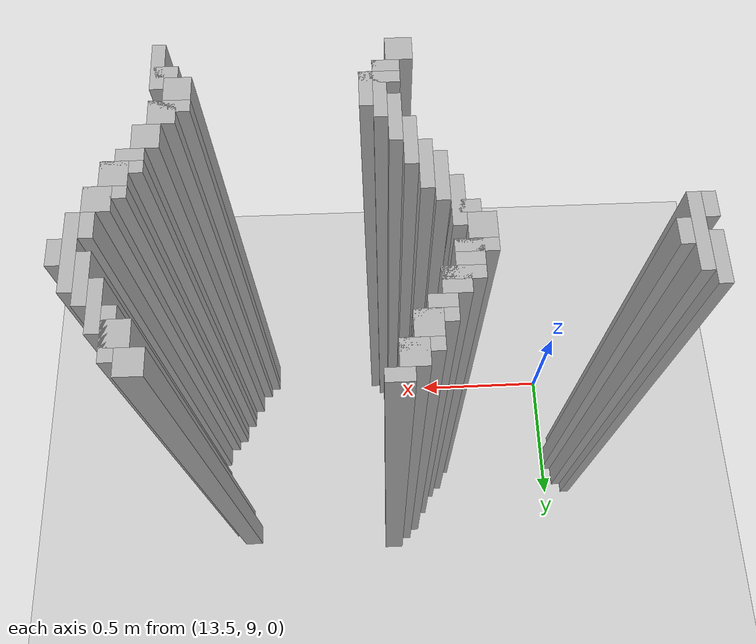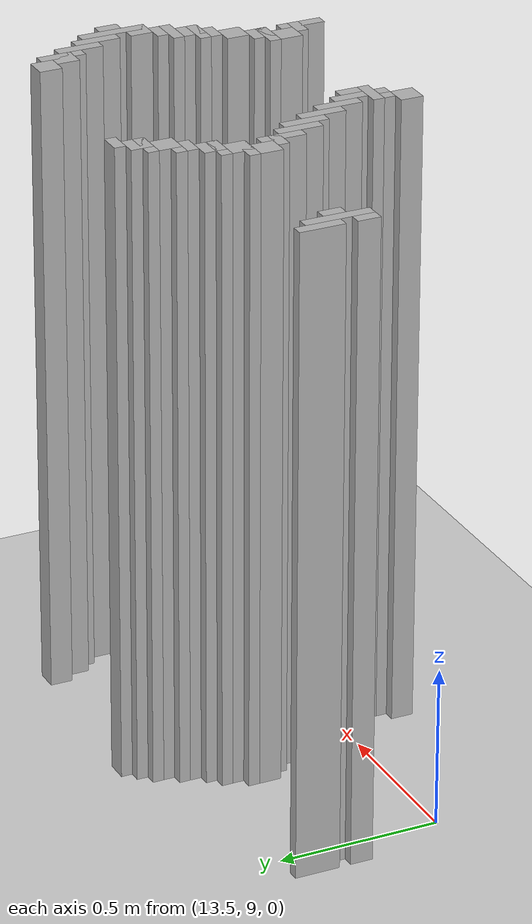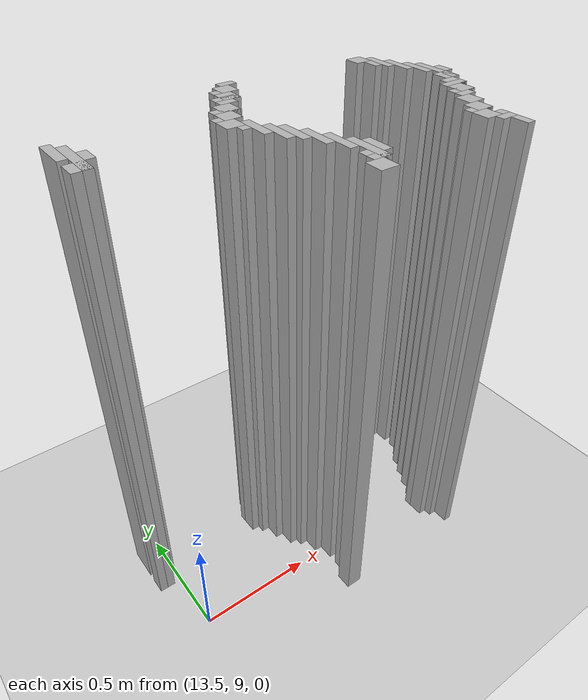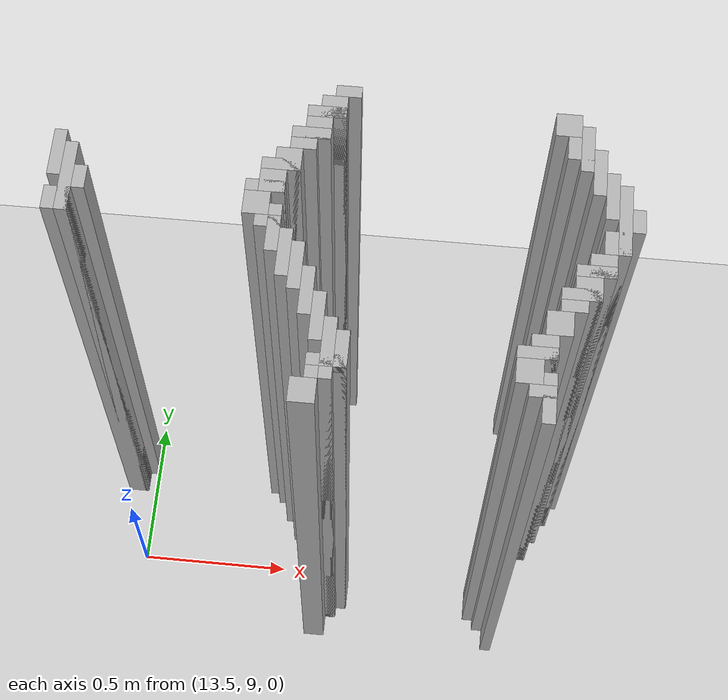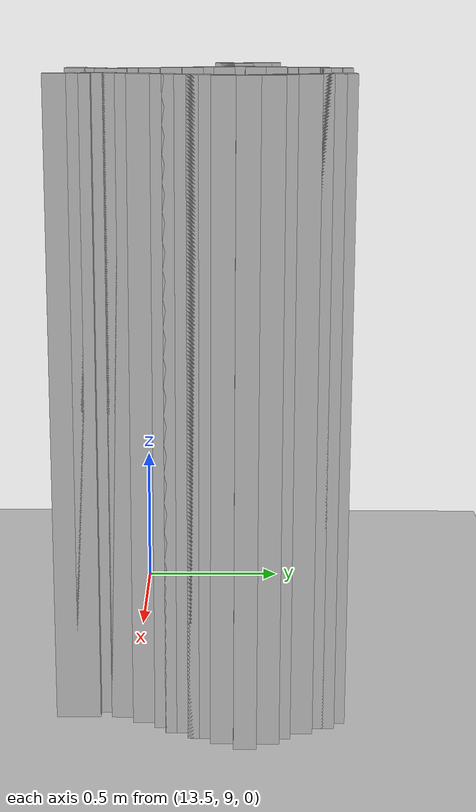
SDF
<sdf version="1.6">
 <world name="slam_world">
  <model name="ground_plane">
   <static>true</static>
   <link name="link">
    <collision name="collision">
     <geometry><plane><normal>0 0 1</normal><size>100 100</size></plane></geometry>
    </collision>
    <visual name="visual">
     <geometry><plane><normal>0 0 1</normal><size>100 100</size></plane></geometry>
     <material>
      <ambient>0.8 0.8 0.8 1</ambient>
      <diffuse>0.8 0.8 0.8 1</diffuse>
      <specular>0.8 0.8 0.8 1</specular>
     </material>
    </visual>
   </link>
  </model>
  <model name="wall_2558">
   <static>true</static>
   <pose>14.164733178654291 9.692575406032482 1.0 0 0 0</pose>
   <link name="link">
    <collision name="collision">
     <geometry><box><size>0.06960556844547564 0.03480278422273782 2.0</size></box></geometry>
    </collision>
    <visual name="visual">
     <geometry><box><size>0.06960556844547564 0.03480278422273782 2.0</size></box></geometry>
     <material><ambient>0.5 0.5 0.5 1</ambient><diffuse>0.7 0.7 0.7 1</diffuse></material>
    </visual>
   </link>
  </model>
  <model name="wall_2569">
   <static>true</static>
   <pose>14.129930394431554 9.640371229698376 1.0 0 0 0</pose>
   <link name="link">
    <collision name="collision">
     <geometry><box><size>0.06960556844547564 0.06960556844547564 2.0</size></box></geometry>
    </collision>
    <visual name="visual">
     <geometry><box><size>0.06960556844547564 0.06960556844547564 2.0</size></box></geometry>
     <material><ambient>0.5 0.5 0.5 1</ambient><diffuse>0.7 0.7 0.7 1</diffuse></material>
    </visual>
   </link>
  </model>
  <model name="wall_2570">
   <static>true</static>
   <pose>14.756380510440835 9.640371229698376 1.0 0 0 0</pose>
   <link name="link">
    <collision name="collision">
     <geometry><box><size>0.06960556844547564 0.06960556844547564 2.0</size></box></geometry>
    </collision>
    <visual name="visual">
     <geometry><box><size>0.06960556844547564 0.06960556844547564 2.0</size></box></geometry>
     <material><ambient>0.5 0.5 0.5 1</ambient><diffuse>0.7 0.7 0.7 1</diffuse></material>
    </visual>
   </link>
  </model>
  <model name="wall_2580">
   <static>true</static>
   <pose>14.112529002320185 9.622969837587007 1.0 0 0 0</pose>
   <link name="link">
    <collision name="collision">
     <geometry><box><size>0.10440835266821345 0.03480278422273782 2.0</size></box></geometry>
    </collision>
    <visual name="visual">
     <geometry><box><size>0.10440835266821345 0.03480278422273782 2.0</size></box></geometry>
     <material><ambient>0.5 0.5 0.5 1</ambient><diffuse>0.7 0.7 0.7 1</diffuse></material>
    </visual>
   </link>
  </model>
  <model name="wall_2581">
   <static>true</static>
   <pose>14.80858468677494 9.5707656612529 1.0 0 0 0</pose>
   <link name="link">
    <collision name="collision">
     <geometry><box><size>0.03480278422273782 0.13921113689095127 2.0</size></box></geometry>
    </collision>
    <visual name="visual">
     <geometry><box><size>0.03480278422273782 0.13921113689095127 2.0</size></box></geometry>
     <material><ambient>0.5 0.5 0.5 1</ambient><diffuse>0.7 0.7 0.7 1</diffuse></material>
    </visual>
   </link>
  </model>
  <model name="wall_2591">
   <static>true</static>
   <pose>14.095127610208817 9.5707656612529 1.0 0 0 0</pose>
   <link name="link">
    <collision name="collision">
     <geometry><box><size>0.06960556844547564 0.06960556844547564 2.0</size></box></geometry>
    </collision>
    <visual name="visual">
     <geometry><box><size>0.06960556844547564 0.06960556844547564 2.0</size></box></geometry>
     <material><ambient>0.5 0.5 0.5 1</ambient><diffuse>0.7 0.7 0.7 1</diffuse></material>
    </visual>
   </link>
  </model>
  <model name="wall_2592">
   <static>true</static>
   <pose>14.791183294663572 9.5707656612529 1.0 0 0 0</pose>
   <link name="link">
    <collision name="collision">
     <geometry><box><size>0.06960556844547564 0.06960556844547564 2.0</size></box></geometry>
    </collision>
    <visual name="visual">
     <geometry><box><size>0.06960556844547564 0.06960556844547564 2.0</size></box></geometry>
     <material><ambient>0.5 0.5 0.5 1</ambient><diffuse>0.7 0.7 0.7 1</diffuse></material>
    </visual>
   </link>
  </model>
  <model name="wall_2602">
   <static>true</static>
   <pose>14.077726218097448 9.55336426914153 1.0 0 0 0</pose>
   <link name="link">
    <collision name="collision">
     <geometry><box><size>0.10440835266821345 0.03480278422273782 2.0</size></box></geometry>
    </collision>
    <visual name="visual">
     <geometry><box><size>0.10440835266821345 0.03480278422273782 2.0</size></box></geometry>
     <material><ambient>0.5 0.5 0.5 1</ambient><diffuse>0.7 0.7 0.7 1</diffuse></material>
    </visual>
   </link>
  </model>
  <model name="wall_2603">
   <static>true</static>
   <pose>14.84338747099768 9.501160092807424 1.0 0 0 0</pose>
   <link name="link">
    <collision name="collision">
     <geometry><box><size>0.03480278422273782 0.13921113689095127 2.0</size></box></geometry>
    </collision>
    <visual name="visual">
     <geometry><box><size>0.03480278422273782 0.13921113689095127 2.0</size></box></geometry>
     <material><ambient>0.5 0.5 0.5 1</ambient><diffuse>0.7 0.7 0.7 1</diffuse></material>
    </visual>
   </link>
  </model>
  <model name="wall_2606">
   <static>true</static>
   <pose>14.06032482598608 9.518561484918793 1.0 0 0 0</pose>
   <link name="link">
    <collision name="collision">
     <geometry><box><size>0.06960556844547564 0.03480278422273782 2.0</size></box></geometry>
    </collision>
    <visual name="visual">
     <geometry><box><size>0.06960556844547564 0.03480278422273782 2.0</size></box></geometry>
     <material><ambient>0.5 0.5 0.5 1</ambient><diffuse>0.7 0.7 0.7 1</diffuse></material>
    </visual>
   </link>
  </model>
  <model name="wall_2615">
   <static>true</static>
   <pose>13.416473317865428 9.431554524361948 1.0 0 0 0</pose>
   <link name="link">
    <collision name="collision">
     <geometry><box><size>0.03480278422273782 0.13921113689095127 2.0</size></box></geometry>
    </collision>
    <visual name="visual">
     <geometry><box><size>0.03480278422273782 0.13921113689095127 2.0</size></box></geometry>
     <material><ambient>0.5 0.5 0.5 1</ambient><diffuse>0.7 0.7 0.7 1</diffuse></material>
    </visual>
   </link>
  </model>
  <model name="wall_2616">
   <static>true</static>
   <pose>14.02552204176334 9.466357308584687 1.0 0 0 0</pose>
   <link name="link">
    <collision name="collision">
     <geometry><box><size>0.06960556844547564 0.06960556844547564 2.0</size></box></geometry>
    </collision>
    <visual name="visual">
     <geometry><box><size>0.06960556844547564 0.06960556844547564 2.0</size></box></geometry>
     <material><ambient>0.5 0.5 0.5 1</ambient><diffuse>0.7 0.7 0.7 1</diffuse></material>
    </visual>
   </link>
  </model>
  <model name="wall_2617">
   <static>true</static>
   <pose>14.878190255220417 9.431554524361948 1.0 0 0 0</pose>
   <link name="link">
    <collision name="collision">
     <geometry><box><size>0.03480278422273782 0.13921113689095127 2.0</size></box></geometry>
    </collision>
    <visual name="visual">
     <geometry><box><size>0.03480278422273782 0.13921113689095127 2.0</size></box></geometry>
     <material><ambient>0.5 0.5 0.5 1</ambient><diffuse>0.7 0.7 0.7 1</diffuse></material>
    </visual>
   </link>
  </model>
  <model name="wall_2626">
   <static>true</static>
   <pose>13.451276102088167 9.361948955916473 1.0 0 0 0</pose>
   <link name="link">
    <collision name="collision">
     <geometry><box><size>0.03480278422273782 0.2088167053364269 2.0</size></box></geometry>
    </collision>
    <visual name="visual">
     <geometry><box><size>0.03480278422273782 0.2088167053364269 2.0</size></box></geometry>
     <material><ambient>0.5 0.5 0.5 1</ambient><diffuse>0.7 0.7 0.7 1</diffuse></material>
    </visual>
   </link>
  </model>
  <model name="wall_2627">
   <static>true</static>
   <pose>14.008120649651971 9.448955916473318 1.0 0 0 0</pose>
   <link name="link">
    <collision name="collision">
     <geometry><box><size>0.10440835266821345 0.03480278422273782 2.0</size></box></geometry>
    </collision>
    <visual name="visual">
     <geometry><box><size>0.10440835266821345 0.03480278422273782 2.0</size></box></geometry>
     <material><ambient>0.5 0.5 0.5 1</ambient><diffuse>0.7 0.7 0.7 1</diffuse></material>
    </visual>
   </link>
  </model>
  <model name="wall_2628">
   <static>true</static>
   <pose>14.912993039443155 9.361948955916473 1.0 0 0 0</pose>
   <link name="link">
    <collision name="collision">
     <geometry><box><size>0.03480278422273782 0.2088167053364269 2.0</size></box></geometry>
    </collision>
    <visual name="visual">
     <geometry><box><size>0.03480278422273782 0.2088167053364269 2.0</size></box></geometry>
     <material><ambient>0.5 0.5 0.5 1</ambient><diffuse>0.7 0.7 0.7 1</diffuse></material>
    </visual>
   </link>
  </model>
  <model name="wall_2631">
   <static>true</static>
   <pose>13.990719257540603 9.39675174013921 1.0 0 0 0</pose>
   <link name="link">
    <collision name="collision">
     <geometry><box><size>0.06960556844547564 0.06960556844547564 2.0</size></box></geometry>
    </collision>
    <visual name="visual">
     <geometry><box><size>0.06960556844547564 0.06960556844547564 2.0</size></box></geometry>
     <material><ambient>0.5 0.5 0.5 1</ambient><diffuse>0.7 0.7 0.7 1</diffuse></material>
    </visual>
   </link>
  </model>
  <model name="wall_2642">
   <static>true</static>
   <pose>13.486078886310905 9.361948955916473 1.0 0 0 0</pose>
   <link name="link">
    <collision name="collision">
     <geometry><box><size>0.03480278422273782 0.06960556844547564 2.0</size></box></geometry>
    </collision>
    <visual name="visual">
     <geometry><box><size>0.03480278422273782 0.06960556844547564 2.0</size></box></geometry>
     <material><ambient>0.5 0.5 0.5 1</ambient><diffuse>0.7 0.7 0.7 1</diffuse></material>
    </visual>
   </link>
  </model>
  <model name="wall_2643">
   <static>true</static>
   <pose>13.973317865429234 9.379350348027842 1.0 0 0 0</pose>
   <link name="link">
    <collision name="collision">
     <geometry><box><size>0.10440835266821345 0.03480278422273782 2.0</size></box></geometry>
    </collision>
    <visual name="visual">
     <geometry><box><size>0.10440835266821345 0.03480278422273782 2.0</size></box></geometry>
     <material><ambient>0.5 0.5 0.5 1</ambient><diffuse>0.7 0.7 0.7 1</diffuse></material>
    </visual>
   </link>
  </model>
  <model name="wall_2644">
   <static>true</static>
   <pose>14.947795823665892 9.361948955916473 1.0 0 0 0</pose>
   <link name="link">
    <collision name="collision">
     <geometry><box><size>0.03480278422273782 0.06960556844547564 2.0</size></box></geometry>
    </collision>
    <visual name="visual">
     <geometry><box><size>0.03480278422273782 0.06960556844547564 2.0</size></box></geometry>
     <material><ambient>0.5 0.5 0.5 1</ambient><diffuse>0.7 0.7 0.7 1</diffuse></material>
    </visual>
   </link>
  </model>
  <model name="wall_2654">
   <static>true</static>
   <pose>13.955916473317865 9.327146171693736 1.0 0 0 0</pose>
   <link name="link">
    <collision name="collision">
     <geometry><box><size>0.06960556844547564 0.06960556844547564 2.0</size></box></geometry>
    </collision>
    <visual name="visual">
     <geometry><box><size>0.06960556844547564 0.06960556844547564 2.0</size></box></geometry>
     <material><ambient>0.5 0.5 0.5 1</ambient><diffuse>0.7 0.7 0.7 1</diffuse></material>
    </visual>
   </link>
  </model>
  <model name="wall_2670">
   <static>true</static>
   <pose>13.433874709976797 9.292343387470996 1.0 0 0 0</pose>
   <link name="link">
    <collision name="collision">
     <geometry><box><size>0.06960556844547564 0.06960556844547564 2.0</size></box></geometry>
    </collision>
    <visual name="visual">
     <geometry><box><size>0.06960556844547564 0.06960556844547564 2.0</size></box></geometry>
     <material><ambient>0.5 0.5 0.5 1</ambient><diffuse>0.7 0.7 0.7 1</diffuse></material>
    </visual>
   </link>
  </model>
  <model name="wall_2671">
   <static>true</static>
   <pose>14.008120649651971 9.257540603248259 1.0 0 0 0</pose>
   <link name="link">
    <collision name="collision">
     <geometry><box><size>0.03480278422273782 0.13921113689095127 2.0</size></box></geometry>
    </collision>
    <visual name="visual">
     <geometry><box><size>0.03480278422273782 0.13921113689095127 2.0</size></box></geometry>
     <material><ambient>0.5 0.5 0.5 1</ambient><diffuse>0.7 0.7 0.7 1</diffuse></material>
    </visual>
   </link>
  </model>
  <model name="wall_2672">
   <static>true</static>
   <pose>14.895591647331786 9.292343387470996 1.0 0 0 0</pose>
   <link name="link">
    <collision name="collision">
     <geometry><box><size>0.06960556844547564 0.06960556844547564 2.0</size></box></geometry>
    </collision>
    <visual name="visual">
     <geometry><box><size>0.06960556844547564 0.06960556844547564 2.0</size></box></geometry>
     <material><ambient>0.5 0.5 0.5 1</ambient><diffuse>0.7 0.7 0.7 1</diffuse></material>
    </visual>
   </link>
  </model>
  <model name="wall_2685">
   <static>true</static>
   <pose>13.990719257540603 9.274941995359628 1.0 0 0 0</pose>
   <link name="link">
    <collision name="collision">
     <geometry><box><size>0.06960556844547564 0.03480278422273782 2.0</size></box></geometry>
    </collision>
    <visual name="visual">
     <geometry><box><size>0.06960556844547564 0.03480278422273782 2.0</size></box></geometry>
     <material><ambient>0.5 0.5 0.5 1</ambient><diffuse>0.7 0.7 0.7 1</diffuse></material>
    </visual>
   </link>
  </model>
  <model name="wall_2702">
   <static>true</static>
   <pose>14.042923433874709 9.187935034802784 1.0 0 0 0</pose>
   <link name="link">
    <collision name="collision">
     <geometry><box><size>0.03480278422273782 0.13921113689095127 2.0</size></box></geometry>
    </collision>
    <visual name="visual">
     <geometry><box><size>0.03480278422273782 0.13921113689095127 2.0</size></box></geometry>
     <material><ambient>0.5 0.5 0.5 1</ambient><diffuse>0.7 0.7 0.7 1</diffuse></material>
    </visual>
   </link>
  </model>
  <model name="wall_2703">
   <static>true</static>
   <pose>14.860788863109049 9.222737819025522 1.0 0 0 0</pose>
   <link name="link">
    <collision name="collision">
     <geometry><box><size>0.06960556844547564 0.06960556844547564 2.0</size></box></geometry>
    </collision>
    <visual name="visual">
     <geometry><box><size>0.06960556844547564 0.06960556844547564 2.0</size></box></geometry>
     <material><ambient>0.5 0.5 0.5 1</ambient><diffuse>0.7 0.7 0.7 1</diffuse></material>
    </visual>
   </link>
  </model>
  <model name="wall_2720">
   <static>true</static>
   <pose>14.077726218097448 9.153132250580047 1.0 0 0 0</pose>
   <link name="link">
    <collision name="collision">
     <geometry><box><size>0.03480278422273782 0.13921113689095127 2.0</size></box></geometry>
    </collision>
    <visual name="visual">
     <geometry><box><size>0.03480278422273782 0.13921113689095127 2.0</size></box></geometry>
     <material><ambient>0.5 0.5 0.5 1</ambient><diffuse>0.7 0.7 0.7 1</diffuse></material>
    </visual>
   </link>
  </model>
  <model name="wall_2721">
   <static>true</static>
   <pose>14.84338747099768 9.205336426914153 1.0 0 0 0</pose>
   <link name="link">
    <collision name="collision">
     <geometry><box><size>0.10440835266821345 0.03480278422273782 2.0</size></box></geometry>
    </collision>
    <visual name="visual">
     <geometry><box><size>0.10440835266821345 0.03480278422273782 2.0</size></box></geometry>
     <material><ambient>0.5 0.5 0.5 1</ambient><diffuse>0.7 0.7 0.7 1</diffuse></material>
    </visual>
   </link>
  </model>
  <model name="wall_2733">
   <static>true</static>
   <pose>14.825986078886311 9.153132250580047 1.0 0 0 0</pose>
   <link name="link">
    <collision name="collision">
     <geometry><box><size>0.06960556844547564 0.06960556844547564 2.0</size></box></geometry>
    </collision>
    <visual name="visual">
     <geometry><box><size>0.06960556844547564 0.06960556844547564 2.0</size></box></geometry>
     <material><ambient>0.5 0.5 0.5 1</ambient><diffuse>0.7 0.7 0.7 1</diffuse></material>
    </visual>
   </link>
  </model>
  <model name="wall_2750">
   <static>true</static>
   <pose>14.112529002320185 9.08352668213457 1.0 0 0 0</pose>
   <link name="link">
    <collision name="collision">
     <geometry><box><size>0.03480278422273782 0.13921113689095127 2.0</size></box></geometry>
    </collision>
    <visual name="visual">
     <geometry><box><size>0.03480278422273782 0.13921113689095127 2.0</size></box></geometry>
     <material><ambient>0.5 0.5 0.5 1</ambient><diffuse>0.7 0.7 0.7 1</diffuse></material>
    </visual>
   </link>
  </model>
  <model name="wall_2751">
   <static>true</static>
   <pose>14.80858468677494 9.135730858468676 1.0 0 0 0</pose>
   <link name="link">
    <collision name="collision">
     <geometry><box><size>0.10440835266821345 0.03480278422273782 2.0</size></box></geometry>
    </collision>
    <visual name="visual">
     <geometry><box><size>0.10440835266821345 0.03480278422273782 2.0</size></box></geometry>
     <material><ambient>0.5 0.5 0.5 1</ambient><diffuse>0.7 0.7 0.7 1</diffuse></material>
    </visual>
   </link>
  </model>
  <model name="wall_2762">
   <static>true</static>
   <pose>14.791183294663572 9.100928074245939 1.0 0 0 0</pose>
   <link name="link">
    <collision name="collision">
     <geometry><box><size>0.06960556844547564 0.03480278422273782 2.0</size></box></geometry>
    </collision>
    <visual name="visual">
     <geometry><box><size>0.06960556844547564 0.03480278422273782 2.0</size></box></geometry>
     <material><ambient>0.5 0.5 0.5 1</ambient><diffuse>0.7 0.7 0.7 1</diffuse></material>
    </visual>
   </link>
  </model>
  <model name="wall_2779">
   <static>true</static>
   <pose>14.147331786542923 9.013921113689095 1.0 0 0 0</pose>
   <link name="link">
    <collision name="collision">
     <geometry><box><size>0.03480278422273782 0.13921113689095127 2.0</size></box></geometry>
    </collision>
    <visual name="visual">
     <geometry><box><size>0.03480278422273782 0.13921113689095127 2.0</size></box></geometry>
     <material><ambient>0.5 0.5 0.5 1</ambient><diffuse>0.7 0.7 0.7 1</diffuse></material>
    </visual>
   </link>
  </model>
  <model name="wall_2780">
   <static>true</static>
   <pose>14.756380510440835 9.048723897911833 1.0 0 0 0</pose>
   <link name="link">
    <collision name="collision">
     <geometry><box><size>0.06960556844547564 0.06960556844547564 2.0</size></box></geometry>
    </collision>
    <visual name="visual">
     <geometry><box><size>0.06960556844547564 0.06960556844547564 2.0</size></box></geometry>
     <material><ambient>0.5 0.5 0.5 1</ambient><diffuse>0.7 0.7 0.7 1</diffuse></material>
    </visual>
   </link>
  </model>
  <model name="wall_2797">
   <static>true</static>
   <pose>14.18213457076566 8.92691415313225 1.0 0 0 0</pose>
   <link name="link">
    <collision name="collision">
     <geometry><box><size>0.03480278422273782 0.17401392111368907 2.0</size></box></geometry>
    </collision>
    <visual name="visual">
     <geometry><box><size>0.03480278422273782 0.17401392111368907 2.0</size></box></geometry>
     <material><ambient>0.5 0.5 0.5 1</ambient><diffuse>0.7 0.7 0.7 1</diffuse></material>
    </visual>
   </link>
  </model>
  <model name="wall_2798">
   <static>true</static>
   <pose>14.721577726218097 8.979118329466356 1.0 0 0 0</pose>
   <link name="link">
    <collision name="collision">
     <geometry><box><size>0.06960556844547564 0.06960556844547564 2.0</size></box></geometry>
    </collision>
    <visual name="visual">
     <geometry><box><size>0.06960556844547564 0.06960556844547564 2.0</size></box></geometry>
     <material><ambient>0.5 0.5 0.5 1</ambient><diffuse>0.7 0.7 0.7 1</diffuse></material>
    </visual>
   </link>
  </model>
  <model name="wall_2811">
   <static>true</static>
   <pose>14.2169373549884 8.92691415313225 1.0 0 0 0</pose>
   <link name="link">
    <collision name="collision">
     <geometry><box><size>0.03480278422273782 0.10440835266821345 2.0</size></box></geometry>
    </collision>
    <visual name="visual">
     <geometry><box><size>0.03480278422273782 0.10440835266821345 2.0</size></box></geometry>
     <material><ambient>0.5 0.5 0.5 1</ambient><diffuse>0.7 0.7 0.7 1</diffuse></material>
    </visual>
   </link>
  </model>
  <model name="wall_2812">
   <static>true</static>
   <pose>14.704176334106728 8.961716937354987 1.0 0 0 0</pose>
   <link name="link">
    <collision name="collision">
     <geometry><box><size>0.10440835266821345 0.03480278422273782 2.0</size></box></geometry>
    </collision>
    <visual name="visual">
     <geometry><box><size>0.10440835266821345 0.03480278422273782 2.0</size></box></geometry>
     <material><ambient>0.5 0.5 0.5 1</ambient><diffuse>0.7 0.7 0.7 1</diffuse></material>
    </visual>
   </link>
  </model>
  <model name="wall_2823">
   <static>true</static>
   <pose>14.68677494199536 8.909512761020881 1.0 0 0 0</pose>
   <link name="link">
    <collision name="collision">
     <geometry><box><size>0.06960556844547564 0.06960556844547564 2.0</size></box></geometry>
    </collision>
    <visual name="visual">
     <geometry><box><size>0.06960556844547564 0.06960556844547564 2.0</size></box></geometry>
     <material><ambient>0.5 0.5 0.5 1</ambient><diffuse>0.7 0.7 0.7 1</diffuse></material>
    </visual>
   </link>
  </model>
  <model name="wall_2841">
   <static>true</static>
   <pose>14.18213457076566 8.892111368909513 1.0 0 0 0</pose>
   <link name="link">
    <collision name="collision">
     <geometry><box><size>0.10440835266821345 0.03480278422273782 2.0</size></box></geometry>
    </collision>
    <visual name="visual">
     <geometry><box><size>0.10440835266821345 0.03480278422273782 2.0</size></box></geometry>
     <material><ambient>0.5 0.5 0.5 1</ambient><diffuse>0.7 0.7 0.7 1</diffuse></material>
    </visual>
   </link>
  </model>
  <model name="wall_2842">
   <static>true</static>
   <pose>14.738979118329466 8.839907192575406 1.0 0 0 0</pose>
   <link name="link">
    <collision name="collision">
     <geometry><box><size>0.03480278422273782 0.13921113689095127 2.0</size></box></geometry>
    </collision>
    <visual name="visual">
     <geometry><box><size>0.03480278422273782 0.13921113689095127 2.0</size></box></geometry>
     <material><ambient>0.5 0.5 0.5 1</ambient><diffuse>0.7 0.7 0.7 1</diffuse></material>
    </visual>
   </link>
  </model>
  <model name="wall_2856">
   <static>true</static>
   <pose>14.164733178654291 8.857308584686775 1.0 0 0 0</pose>
   <link name="link">
    <collision name="collision">
     <geometry><box><size>0.06960556844547564 0.03480278422273782 2.0</size></box></geometry>
    </collision>
    <visual name="visual">
     <geometry><box><size>0.06960556844547564 0.03480278422273782 2.0</size></box></geometry>
     <material><ambient>0.5 0.5 0.5 1</ambient><diffuse>0.7 0.7 0.7 1</diffuse></material>
    </visual>
   </link>
  </model>
  <model name="wall_2857">
   <static>true</static>
   <pose>14.721577726218097 8.857308584686775 1.0 0 0 0</pose>
   <link name="link">
    <collision name="collision">
     <geometry><box><size>0.06960556844547564 0.03480278422273782 2.0</size></box></geometry>
    </collision>
    <visual name="visual">
     <geometry><box><size>0.06960556844547564 0.03480278422273782 2.0</size></box></geometry>
     <material><ambient>0.5 0.5 0.5 1</ambient><diffuse>0.7 0.7 0.7 1</diffuse></material>
    </visual>
   </link>
  </model>
  <model name="wall_2871">
   <static>true</static>
   <pose>14.129930394431554 8.805104408352667 1.0 0 0 0</pose>
   <link name="link">
    <collision name="collision">
     <geometry><box><size>0.06960556844547564 0.06960556844547564 2.0</size></box></geometry>
    </collision>
    <visual name="visual">
     <geometry><box><size>0.06960556844547564 0.06960556844547564 2.0</size></box></geometry>
     <material><ambient>0.5 0.5 0.5 1</ambient><diffuse>0.7 0.7 0.7 1</diffuse></material>
    </visual>
   </link>
  </model>
 </world>
</sdf>
